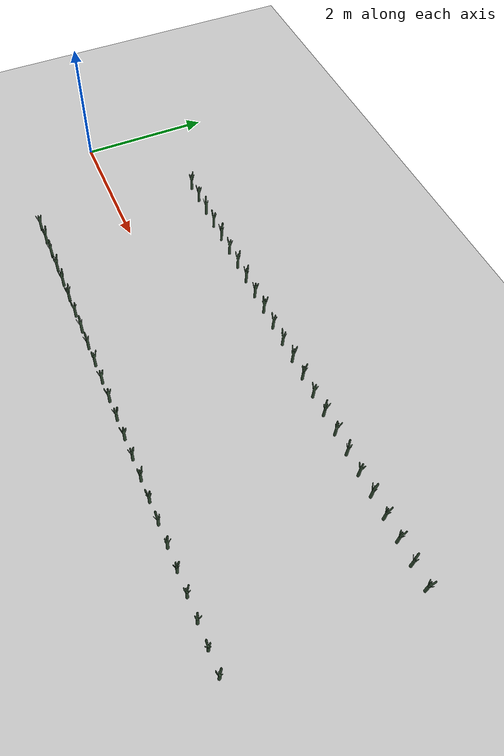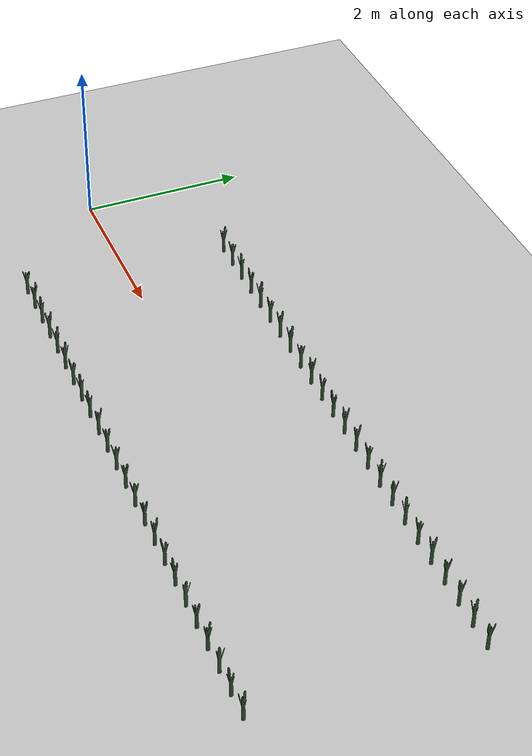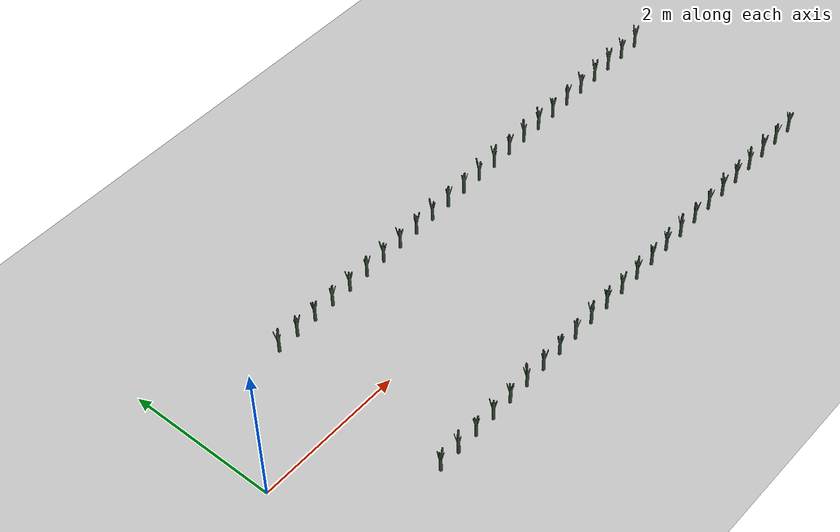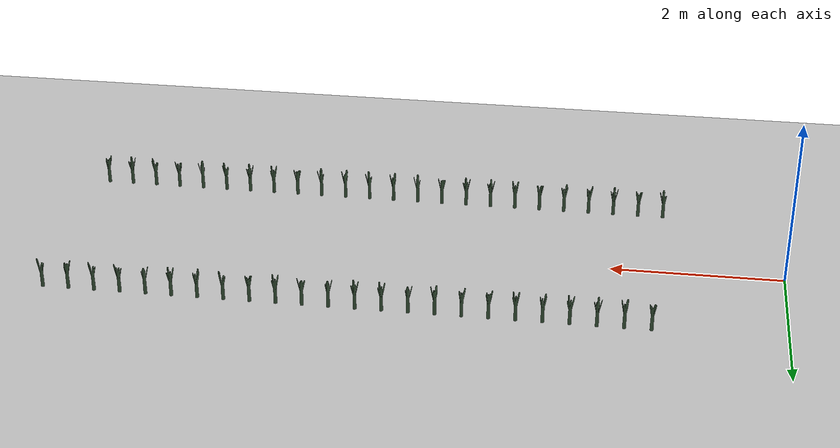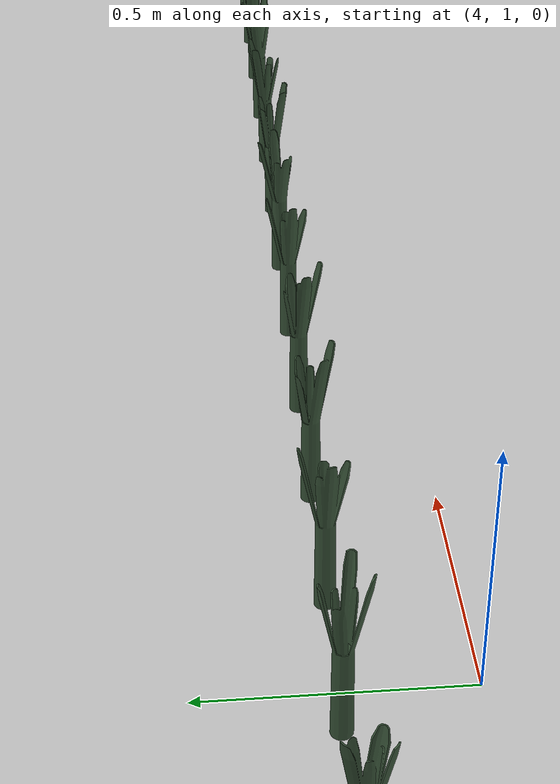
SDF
<sdf version="1.6">
 <world name="default">
  <light name="sun" type="directional">
   <pose>0 0 10 0 -0 0</pose>
   <diffuse>0.5 0.5 0.5 1</diffuse>
   <specular>0.1 0.1 0.1 1</specular>
   <attenuation>
    <range>1000</range>
    <constant>0.9</constant>
    <linear>0.01</linear>
    <quadratic>0.001</quadratic>
   </attenuation>
   <direction>0.9 0.5 -1</direction>
  </light>
  <scene><background>130 200 255 1</background><ambient>130 140 140 1</ambient></scene>
  <include><uri>model://dirt_plane</uri></include>
  <include><uri>model://Leek</uri><pose>1.500000 1.250000 0.15 0 0 126.393523</pose><static>0</static></include>
  <include>
   <uri>model://Leek</uri>
   <pose>1.800000 1.250000 0.15 0 0 -134.079911</pose>
   <static>0</static>
  </include>
  <include>
   <uri>model://Leek</uri>
   <pose>2.100000 1.250000 0.15 0 0 -122.702375</pose>
   <static>0</static>
  </include>
  <include><uri>model://Leek</uri><pose>2.400000 1.250000 0.15 0 0 122.960313</pose><static>0</static></include>
  <include><uri>model://Leek</uri><pose>2.700000 1.250000 0.15 0 0 71.597839</pose><static>0</static></include>
  <include><uri>model://Leek</uri><pose>3.000000 1.250000 0.15 0 0 104.319155</pose><static>0</static></include>
  <include><uri>model://Leek</uri><pose>3.300000 1.250000 0.15 0 0 2.145113</pose><static>0</static></include>
  <include>
   <uri>model://Leek</uri>
   <pose>3.600000 1.250000 0.15 0 0 -135.947199</pose>
   <static>0</static>
  </include>
  <include>
   <uri>model://Leek</uri>
   <pose>3.900000 1.250000 0.15 0 0 -159.033685</pose>
   <static>0</static>
  </include>
  <include><uri>model://Leek</uri><pose>4.200000 1.250000 0.15 0 0 -10.954931</pose><static>0</static></include>
  <include><uri>model://Leek</uri><pose>4.500000 1.250000 0.15 0 0 53.892075</pose><static>0</static></include>
  <include><uri>model://Leek</uri><pose>4.800000 1.250000 0.15 0 0 160.505669</pose><static>0</static></include>
  <include><uri>model://Leek</uri><pose>5.100000 1.250000 0.15 0 0 7.944384</pose><static>0</static></include>
  <include><uri>model://Leek</uri><pose>5.400000 1.250000 0.15 0 0 6.521782</pose><static>0</static></include>
  <include><uri>model://Leek</uri><pose>5.700000 1.250000 0.15 0 0 72.909184</pose><static>0</static></include>
  <include><uri>model://Leek</uri><pose>6.000000 1.250000 0.15 0 0 -36.753564</pose><static>0</static></include>
  <include><uri>model://Leek</uri><pose>6.300000 1.250000 0.15 0 0 -57.015927</pose><static>0</static></include>
  <include><uri>model://Leek</uri><pose>6.600000 1.250000 0.15 0 0 71.847772</pose><static>0</static></include>
  <include>
   <uri>model://Leek</uri>
   <pose>6.900000 1.250000 0.15 0 0 -178.448545</pose>
   <static>0</static>
  </include>
  <include>
   <uri>model://Leek</uri>
   <pose>7.200000 1.250000 0.15 0 0 -104.964189</pose>
   <static>0</static>
  </include>
  <include>
   <uri>model://Leek</uri>
   <pose>7.500000 1.250000 0.15 0 0 -163.499980</pose>
   <static>0</static>
  </include>
  <include><uri>model://Leek</uri><pose>7.800000 1.250000 0.15 0 0 -81.964909</pose><static>0</static></include>
  <include><uri>model://Leek</uri><pose>8.100000 1.250000 0.15 0 0 140.428996</pose><static>0</static></include>
  <include><uri>model://Leek</uri><pose>8.400000 1.250000 0.15 0 0 -6.607387</pose><static>0</static></include>
  <include><uri>model://Leek</uri><pose>1.414526 -1.250000 0.15 0 0 36.271914</pose><static>0</static></include>
  <include><uri>model://Leek</uri><pose>1.714526 -1.250000 0.15 0 0 63.555347</pose><static>0</static></include>
  <include>
   <uri>model://Leek</uri>
   <pose>2.014526 -1.250000 0.15 0 0 -91.206670</pose>
   <static>0</static>
  </include>
  <include>
   <uri>model://Leek</uri>
   <pose>2.314526 -1.250000 0.15 0 0 134.157076</pose>
   <static>0</static>
  </include>
  <include>
   <uri>model://Leek</uri>
   <pose>2.614526 -1.250000 0.15 0 0 -97.955139</pose>
   <static>0</static>
  </include>
  <include>
   <uri>model://Leek</uri>
   <pose>2.914526 -1.250000 0.15 0 0 -118.419887</pose>
   <static>0</static>
  </include>
  <include>
   <uri>model://Leek</uri>
   <pose>3.214526 -1.250000 0.15 0 0 -65.222830</pose>
   <static>0</static>
  </include>
  <include>
   <uri>model://Leek</uri>
   <pose>3.514526 -1.250000 0.15 0 0 109.902796</pose>
   <static>0</static>
  </include>
  <include>
   <uri>model://Leek</uri>
   <pose>3.814526 -1.250000 0.15 0 0 -53.225790</pose>
   <static>0</static>
  </include>
  <include>
   <uri>model://Leek</uri>
   <pose>4.114526 -1.250000 0.15 0 0 -68.823649</pose>
   <static>0</static>
  </include>
  <include>
   <uri>model://Leek</uri>
   <pose>4.414526 -1.250000 0.15 0 0 -45.420609</pose>
   <static>0</static>
  </include>
  <include>
   <uri>model://Leek</uri>
   <pose>4.714526 -1.250000 0.15 0 0 -83.546807</pose>
   <static>0</static>
  </include>
  <include><uri>model://Leek</uri><pose>5.014526 -1.250000 0.15 0 0 11.342631</pose><static>0</static></include>
  <include>
   <uri>model://Leek</uri>
   <pose>5.314526 -1.250000 0.15 0 0 -70.964196</pose>
   <static>0</static>
  </include>
  <include>
   <uri>model://Leek</uri>
   <pose>5.614526 -1.250000 0.15 0 0 168.309086</pose>
   <static>0</static>
  </include>
  <include><uri>model://Leek</uri><pose>5.914526 -1.250000 0.15 0 0 19.338323</pose><static>0</static></include>
  <include><uri>model://Leek</uri><pose>6.214526 -1.250000 0.15 0 0 85.506761</pose><static>0</static></include>
  <include>
   <uri>model://Leek</uri>
   <pose>6.514526 -1.250000 0.15 0 0 -147.407136</pose>
   <static>0</static>
  </include>
  <include>
   <uri>model://Leek</uri>
   <pose>6.814526 -1.250000 0.15 0 0 -50.987015</pose>
   <static>0</static>
  </include>
  <include><uri>model://Leek</uri><pose>7.114526 -1.250000 0.15 0 0 55.179470</pose><static>0</static></include>
  <include>
   <uri>model://Leek</uri>
   <pose>7.414526 -1.250000 0.15 0 0 -43.339586</pose>
   <static>0</static>
  </include>
  <include>
   <uri>model://Leek</uri>
   <pose>7.714526 -1.250000 0.15 0 0 -19.398334</pose>
   <static>0</static>
  </include>
  <include>
   <uri>model://Leek</uri>
   <pose>8.014526 -1.250000 0.15 0 0 160.439352</pose>
   <static>0</static>
  </include>
  <include>
   <uri>model://Leek</uri>
   <pose>8.314526 -1.250000 0.15 0 0 -98.133933</pose>
   <static>0</static>
  </include>
 </world>
</sdf>

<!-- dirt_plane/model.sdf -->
<sdf version="1.4">
<model name="dirt_plane">
  <static>true</static>
    <link name="link">
      <collision name="collision">
        <geometry>
          <plane>
            <normal>0 0 1</normal>
            <size>100 100</size>
          </plane>
        </geometry>
        <surface>
          <friction>
            <ode>
              <mu>100</mu>
              <mu2>50</mu2>
            </ode>
          </friction>
        </surface>
      </collision>
      <visual name="visual">
        <cast_shadows>false</cast_shadows>
        <geometry>
          <plane>
            <normal>0 0 1</normal>
            <size>100 100</size>
          </plane>
        </geometry>
        <material>
          <script>
            <uri>model://ground_plane/materials/scripts/my_ground_plane.material</uri>
            <uri>model://ground_plane/materials/textures</uri>
            <name>my_ground_plane/Dirt</name>
          </script>
        </material>
      </visual>
    </link>
  </model>
</sdf>

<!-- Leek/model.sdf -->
<sdf version='1.6'>
  <model name='Leek'>
    <link name='link'>
      <pose frame=''>0 0 0 0 -0 0</pose>
      <inertial>
        <mass>1</mass>
        <inertia>
          <ixx>0.145833</ixx>
          <ixy>0</ixy>
          <ixz>0</ixz>
          <iyy>0.145833</iyy>
          <iyz>0</iyz>
          <izz>0.125</izz>
        </inertia>
        <pose frame=''>0 0 0 0 -0 0</pose>
      </inertial>
      <self_collide>0</self_collide>
      <kinematic>0</kinematic>
      <gravity>1</gravity>
      <visual name='visual'>
        <geometry>
          <mesh>
            <uri>model://Leek/Poireau.dae</uri>
            <scale>1 1 1</scale>
          </mesh>
        </geometry>
        <material>
          <script>
            <name>Gazebo/Grey</name>
            <uri>file://media/materials/scripts/gazebo.material</uri>
          </script>
          <ambient>0.3 0.7 0.4 0</ambient>
          <diffuse>0.2 0.3 0.2 0</diffuse>
          <specular>0 0 0 1</specular>
          <emissive>0 0 0 1</emissive>
          <shader type='vertex'>
            <normal_map>__default__</normal_map>
          </shader>
        </material>
        <pose frame=''>0 0 -0.08 0 -0 0</pose>
        <cast_shadows>1</cast_shadows>
        <transparency>0</transparency>
      </visual>
      <collision name='collision'>
        <laser_retro>0</laser_retro>
        <max_contacts>10</max_contacts>
        <pose frame=''>0 0 0 0 -0 0</pose>
        <geometry>
          <cylinder>
            <radius>0.02</radius>
            <length>0.25</length>
          </cylinder>
        </geometry>
        <surface>
          <friction>
            <ode>
              <mu>1</mu>
              <mu2>1</mu2>
              <fdir1>0 0 0</fdir1>
              <slip1>0</slip1>
              <slip2>0</slip2>
            </ode>
            <torsional>
              <coefficient>1</coefficient>
              <patch_radius>0</patch_radius>
              <surface_radius>0</surface_radius>
              <use_patch_radius>1</use_patch_radius>
              <ode>
                <slip>0</slip>
              </ode>
            </torsional>
          </friction>
          <bounce>
            <restitution_coefficient>0</restitution_coefficient>
            <threshold>1e+06</threshold>
          </bounce>
          <contact>
            <collide_without_contact>0</collide_without_contact>
            <collide_without_contact_bitmask>1</collide_without_contact_bitmask>
            <collide_bitmask>1</collide_bitmask>
            <ode>
              <soft_cfm>0</soft_cfm>
              <soft_erp>0.2</soft_erp>
              <kp>1e+13</kp>
              <kd>1</kd>
              <max_vel>0.01</max_vel>
              <min_depth>0</min_depth>
            </ode>
            <bullet>
              <split_impulse>1</split_impulse>
              <split_impulse_penetration_threshold>-0.01</split_impulse_penetration_threshold>
              <soft_cfm>0</soft_cfm>
              <soft_erp>0.2</soft_erp>
              <kp>1e+13</kp>
              <kd>1</kd>
            </bullet>
          </contact>
        </surface>
      </collision>
    </link>
    <static>0</static>
    <allow_auto_disable>1</allow_auto_disable>
  </model>
</sdf>
